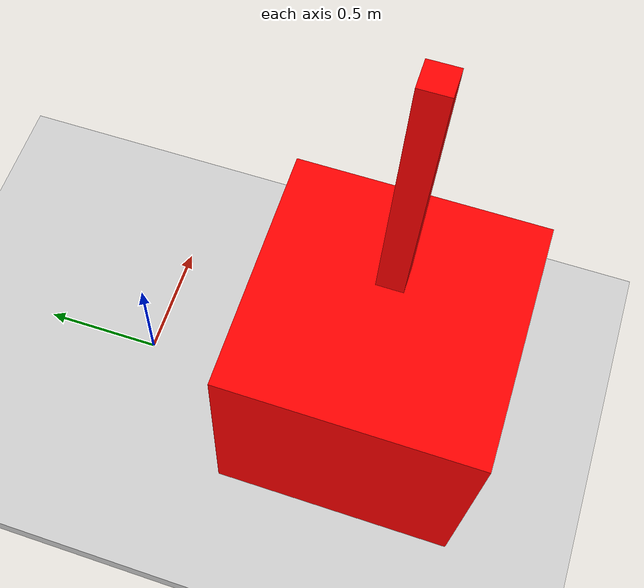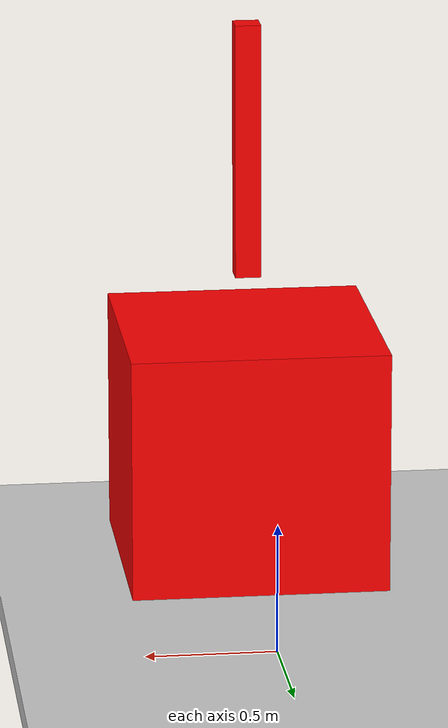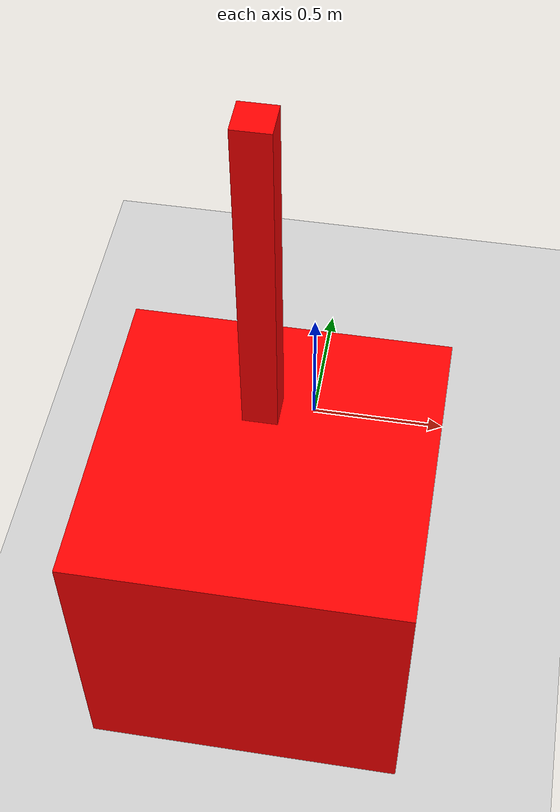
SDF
<?xml version="1.0" ?>

<sdf version="1.6">
  <world name="visualize_lidar_world">

    <gui fullscreen="0">
      <plugin filename="GzScene3D" name="3D View">
        <camera_pose>10 0 6 0 0.5 3.14</camera_pose>
        <ignition-gui>
          <title>3D View</title>
          <property type="bool" key="showTitleBar">false</property>
          <property type="string" key="state">docked</property>
        </ignition-gui>
      </plugin>

      <plugin filename="SwitchPanel" name="iginition_plugin_lecture::SwitchPanel">
        <forward_speed>0.3</forward_speed>
        <reverse_speed>-0.1</reverse_speed>
        <ignition-gui>
          <title>SwitchPanel</title>
          <property type="bool" key="showTitleBar">true</property>
          <property type="string" key="state">docked</property>
          <property key="resizable" type="bool">true</property>
        </ignition-gui>
      </plugin>
    </gui>

    <physics name="1ms" type="ignored">
      <max_step_size>0.01</max_step_size>
      <real_time_factor>1.0</real_time_factor>
    </physics>
    <plugin
      filename="libignition-gazebo-physics-system.so"
      name="ignition::gazebo::systems::Physics">
    </plugin>
    <plugin
      filename="libignition-gazebo-sensors-system.so"
      name="ignition::gazebo::systems::Sensors">
      <render_engine>ogre2</render_engine>
    </plugin>
    <plugin
      filename="libignition-gazebo-scene-broadcaster-system.so"
      name="ignition::gazebo::systems::SceneBroadcaster">
    </plugin>

    <light name="sun2" type="directional">
      <cast_shadows>true</cast_shadows>
      <pose>0 0 10 0 0 0</pose>
      <diffuse>0.8 0.8 0.8 1</diffuse>
      <specular>0.2 0.2 0.2 1</specular>
      <attenuation>
        <range>1000</range>
        <constant>0.9</constant>
        <linear>0.01</linear>
        <quadratic>0.001</quadratic>
      </attenuation>
      <direction>-0.5 0.1 -0.9</direction>
    </light>

    <model name="ground_plane">
      <static>true</static>
      <pose>0 0 0 0 0 0</pose>
      <link name="link">
        <collision name="collision">
          <geometry>
            <box>
              <size>20 20 0.1</size>
            </box>
          </geometry>
        </collision>
        <visual name="visual">
          <geometry>
            <box>
              <size>20 20 0.1</size>
            </box>
          </geometry>
          <material>
            <ambient>0.8 0.8 0.8 1</ambient>
            <diffuse>0.8 0.8 0.8 1</diffuse>
            <specular>0.8 0.8 0.8 1</specular>
          </material>
        </visual>
      </link>
    </model>

    <model name="box">
      <plugin filename="libRotateAxis.so" name="iginition_plugin_lecture::RotateAxis">
        <target_joint>arm_joint</target_joint>
      </plugin>

      <pose>0 -1 0.5 0 0 0</pose>
      <link name="box_link">
        <inertial>
          <inertia>
            <ixx>1</ixx>
            <ixy>0</ixy>
            <ixz>0</ixz>
            <iyy>1</iyy>
            <iyz>0</iyz>
            <izz>1</izz>
          </inertia>
          <mass>1.0</mass>
        </inertial>
        <collision name="box_collision">
          <geometry>
            <box>
              <size>1 1 1</size>
            </box>
          </geometry>
        </collision>

        <visual name="box_visual">
          <geometry>
            <box>
              <size>1 1 1</size>
            </box>
          </geometry>
          <material>
            <ambient>1 0 0 1</ambient>
            <diffuse>1 0 0 1</diffuse>
            <specular>1 0 0 1</specular>
          </material>
        </visual>
      </link>

      <joint name="arm_joint" type="revolute">
        <pose>0 0 -0.5 0 0 0</pose>
        <parent>box_link</parent>
        <child>arm_link</child>
        <axis>
          <xyz>1 0 0</xyz>
          <limit>
            <upper>1.57</upper>
            <lower>-1.57</lower>
            <effort>1.0</effort>
          </limit>
        </axis>
      </joint>

      <link name="arm_link">
        <pose>0 0 1.2 0 0 0</pose>
        <inertial>
          <inertia>
            <ixx>0.008</ixx>
            <ixy>0</ixy>
            <ixz>0</ixz>
            <iyy>0.008</iyy>
            <iyz>0</iyz>
            <izz>0.00016</izz>
          </inertia>
          <mass>0.1</mass>
        </inertial>
        <collision name="arm_collision">
          <geometry>
            <box>
              <size>0.1 0.1 1</size>
            </box>
          </geometry>
        </collision>

        <visual name="arm_visual">
          <geometry>
            <box>
              <size>0.1 0.1 1</size>
            </box>
          </geometry>
          <material>
            <ambient>1 0 0 1</ambient>
            <diffuse>1 0 0 1</diffuse>
            <specular>1 0 0 1</specular>
          </material>
        </visual>
      </link>
    </model>

  </world>
</sdf>
